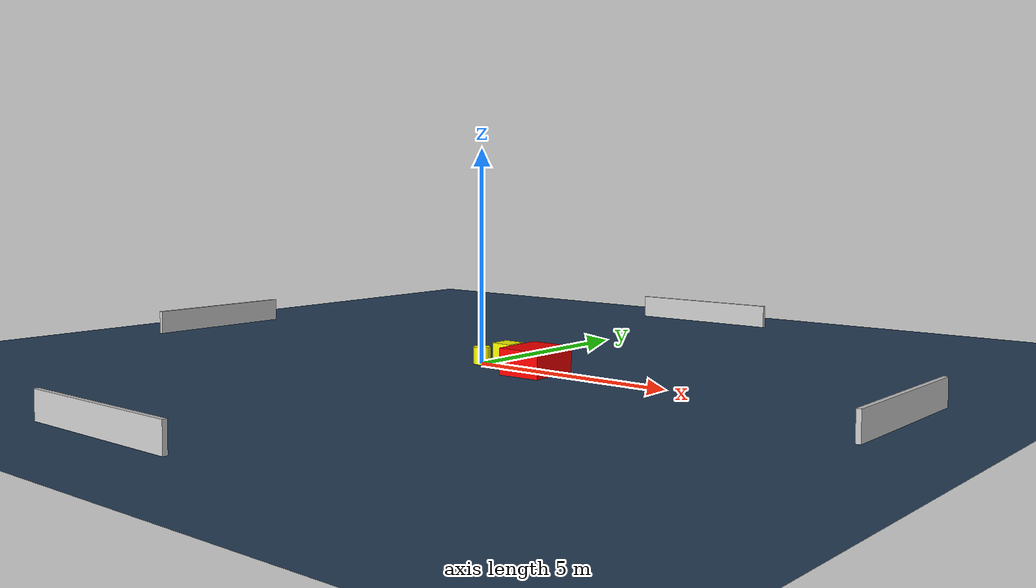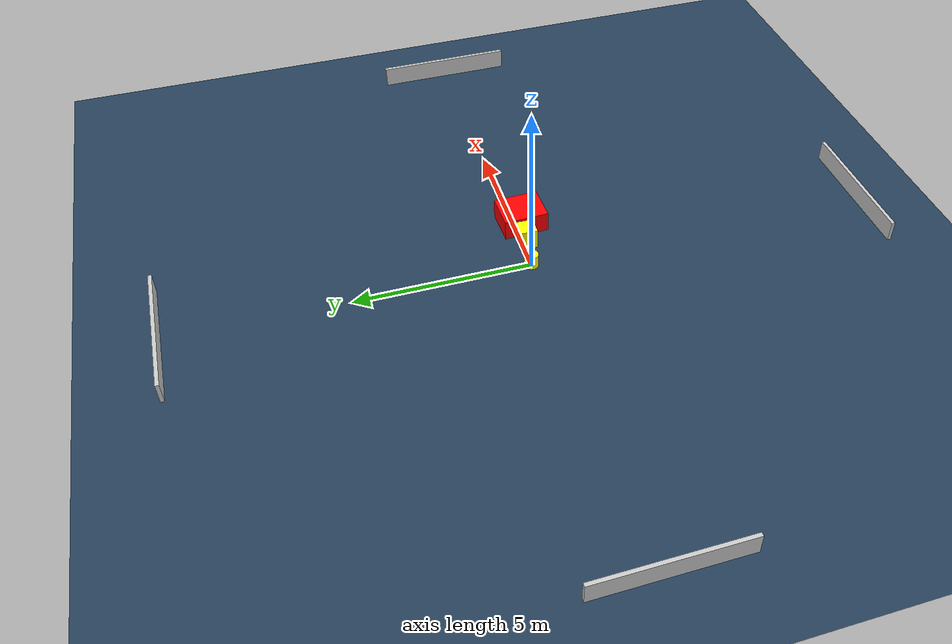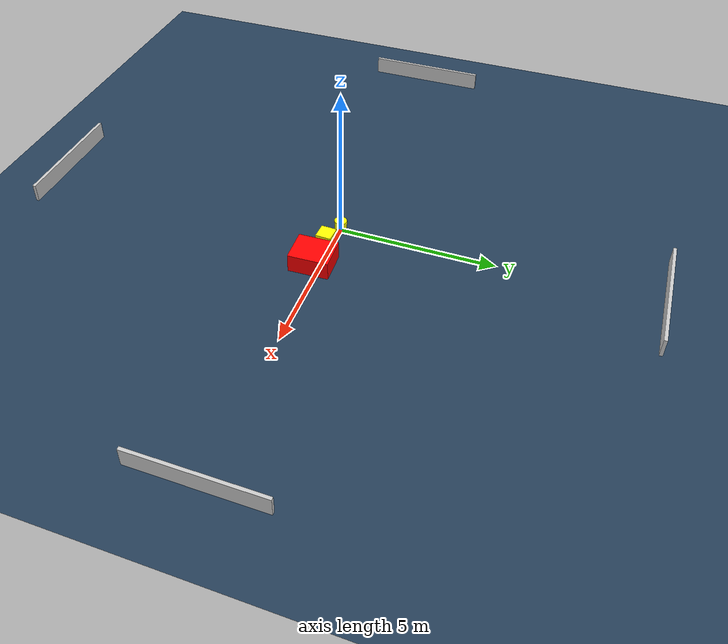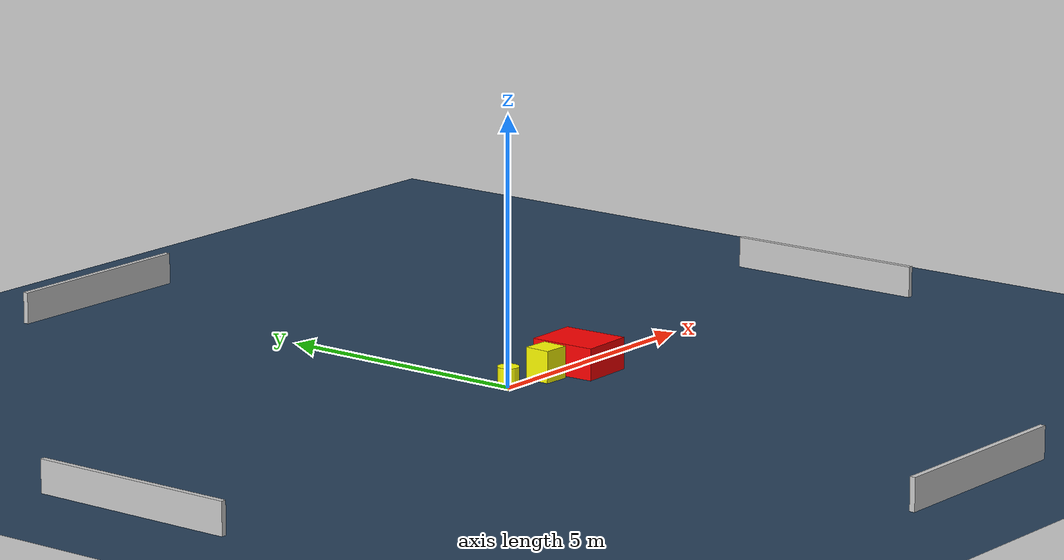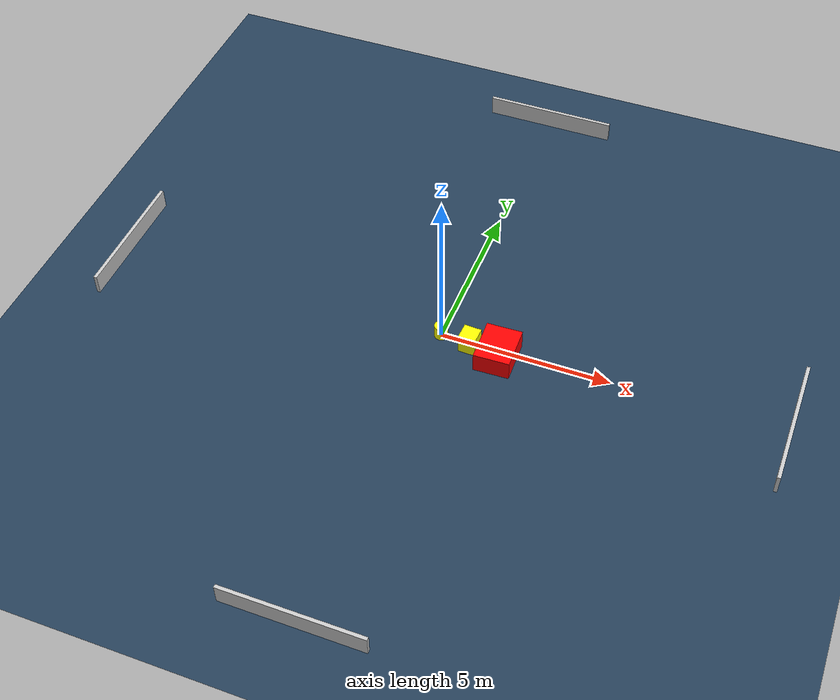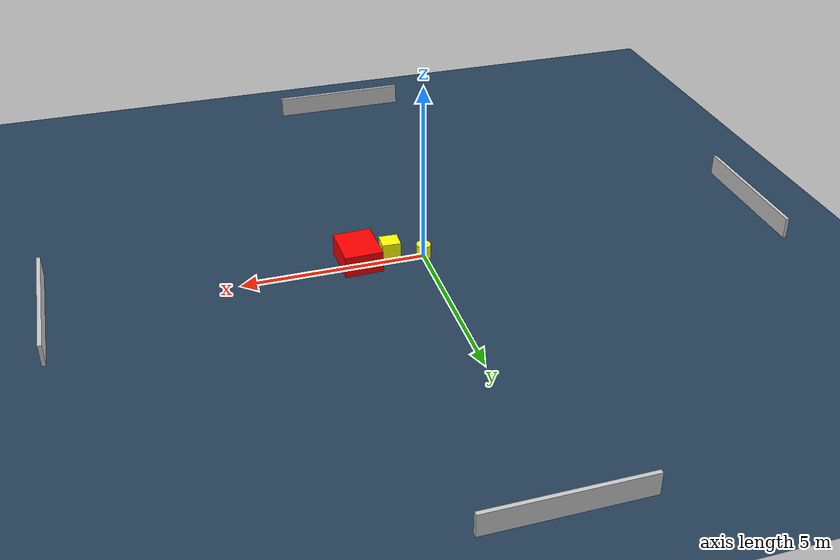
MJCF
<?xml version="1.0" ?>
<mujoco model="generated_environment">
  <option timestep="0.01" integrator="RK4" cone="elliptic"/>
  <default>
    <geom density="1"/>
  </default>
  <asset>
    <texture builtin="gradient" height="3072" name="skybox" rgb1="0.3 0.5 0.7" rgb2="0 0 0" type="skybox" width="512"/>
    <texture builtin="checker" height="300" name="groundplane" rgb1="0.2 0.3 0.4" rgb2="0.1 0.2 0.3" type="2d" width="300"/>
    <material name="groundplane" reflectance="0.2" texrepeat="5 5" texture="groundplane"/>
  </asset>
  <worldbody>
    <light dir="0 0 -1" directional="true" pos="0 0 1.5"/>
    <geom condim="3" friction="0.5 0.005 0.001" material="groundplane" name="floor" pos="0 0 0" size="0 0 0.05" type="plane"/>
    <body name="walls">
      <geom name="wall_1" condim="4" pos="-10.0 0.0 0.3" rgba="0.800000011920929 0.800000011920929 0.800000011920929 1.0" size="0.05 2.0 0.3" type="box"/>
      <geom name="wall_2" condim="4" pos="10.0 0.0 0.3" rgba="0.800000011920929 0.800000011920929 0.800000011920929 1.0" size="0.05 2.0 0.3" type="box"/>
      <geom name="wall_3" condim="4" pos="0.0 -10.0 0.3" rgba="0.800000011920929 0.800000011920929 0.800000011920929 1.0" size="2.0 0.05 0.3" type="box"/>
      <geom name="wall_4" condim="4" pos="0.0 10.0 0.3" rgba="0.800000011920929 0.800000011920929 0.800000011920929 1.0" size="2.0 0.05 0.3" type="box"/>
    </body>
    <body name="robot">
      <joint name="joint_x" type="slide" pos="0 0 0" axis="1 0 0"/>
      <joint name="joint_y" type="slide" pos="0 0 0" axis="0 1 0"/>
      <geom name="robot" type="cylinder" pos="0.0 0.0 0.2" size="0.2 0.2 0.0" mass="5.0" friction="1.0 0.005 0.0001" condim="4" rgba="1.0 1.0 0.0 1.0"/>
    </body>
    <body name="obstacle_1_movable">
      <geom name="obstacle_1_movable" condim="4" pos="0.9124708696316466 -0.14905230581973883 0.3" euler="0 0 177.56726183009846" friction="0.0 0.005 0.001" rgba="1.0 1.0 0.0 1.0" size="0.2543492782922295 0.24562037676800272 0.3" type="box" mass="0.1"/>
      <joint type="free"/>
    </body>
    <body name="obstacle_2_static">
      <geom name="obstacle_2_static" condim="4" pos="1.7778447656788772 -0.23741811340706737 0.3" euler="0 0 271.7085964490195" friction="0.0 0.005 0.001" rgba="1.0 0.0 0.0 1.0" size="0.6376439588466106 0.5229475588824184 0.3" type="box"/>
    </body>
  </worldbody>
  <actuator>
    <motor name="actuator_x" joint="joint_x" gear="1" ctrlrange="-1 1"/>
    <motor name="actuator_y" joint="joint_y" gear="1" ctrlrange="-1 1"/>
  </actuator>
</mujoco>
